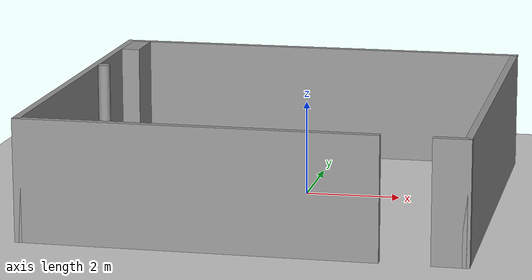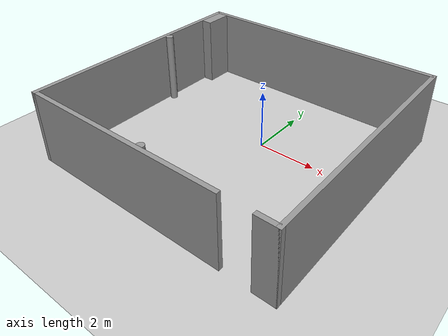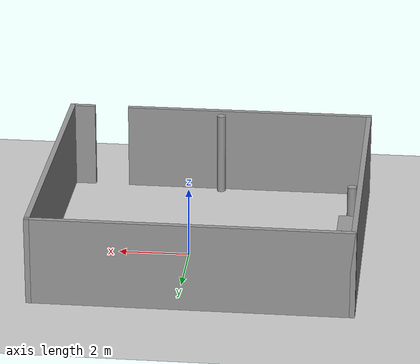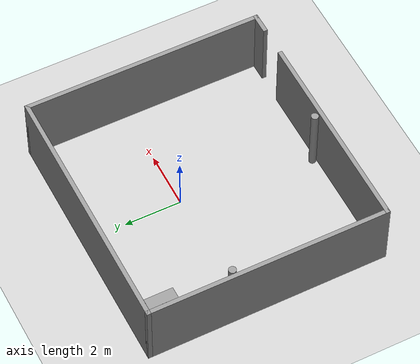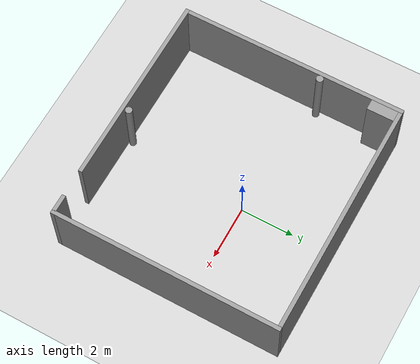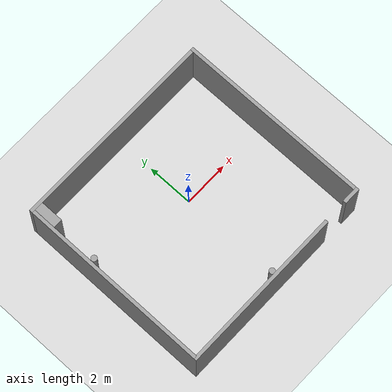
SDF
<sdf version="1.6">
 <world name="default">
  <light name="sun" type="directional">
   <pose>0 0 10 0 -0 0</pose>
   <diffuse>0.8 0.8 0.8 1</diffuse>
   <specular>0.2 0.2 0.2 1</specular>
   <attenuation>
    <range>1000</range>
    <constant>0.9</constant>
    <linear>0.01</linear>
    <quadratic>0.001</quadratic>
   </attenuation>
   <direction>-0.5 0.1 -0.9</direction>
  </light>
  <model name="ground_plane">
   <static>1</static>
   <link name="link">
    <collision name="collision">
     <geometry><plane><normal>0 0 1</normal><size>100 100</size></plane></geometry>
     <surface>
      <contact><collide_bitmask>65535</collide_bitmask></contact>
      <friction><ode><mu>100</mu><mu2>50</mu2></ode></friction>
     </surface>
    </collision>
    <visual name="visual">
     <cast_shadows>0</cast_shadows>
     <geometry><plane><normal>0 0 1</normal><size>100 100</size></plane></geometry>
     <material>
      <script><uri>file://media/materials/scripts/gazebo.material</uri><name>Gazebo/Grey</name></script>
     </material>
    </visual>
   </link>
  </model>
  <gravity>0 0 -9.8</gravity>
  <magnetic_field>6e-06 2.3e-05 -4.2e-05</magnetic_field>
  <atmosphere type="adiabatic"/>
  <physics name="default_physics" default="0" type="ode">
   <max_step_size>0.001</max_step_size>
   <real_time_factor>1</real_time_factor>
   <real_time_update_rate>1000</real_time_update_rate>
  </physics>
  <scene><ambient>0.4 0.4 0.4 1</ambient><background>0.7 0.7 0.7 1</background><shadows>1</shadows></scene>
  <audio><device>default</device></audio>
  <spherical_coordinates>
   <surface_model>EARTH_WGS84</surface_model>
   <latitude_deg>0</latitude_deg>
   <longitude_deg>0</longitude_deg>
   <elevation>0</elevation>
   <heading_deg>0</heading_deg>
  </spherical_coordinates>
  <model name="try2">
   <pose>-0.39709 -0.678514 0 0 -0 0</pose>
   <link name="Wall_13">
    <collision name="Wall_13_Collision">
     <geometry><box><size>8.5 0.15 2.5</size></box></geometry>
     <pose>0 0 1.25 0 -0 0</pose>
    </collision>
    <visual name="Wall_13_Visual">
     <pose>0 0 1.25 0 -0 0</pose>
     <geometry><box><size>8.5 0.15 2.5</size></box></geometry>
     <material>
      <script><uri>file://media/materials/scripts/gazebo.material</uri><name>Gazebo/Grey</name></script>
      <ambient>1 1 1 1</ambient>
     </material>
     <meta><layer>0</layer></meta>
    </visual>
    <pose>-4.425 -0 0 0 -0 -1.5708</pose>
   </link>
   <link name="Wall_14">
    <collision name="Wall_14_Collision">
     <geometry><box><size>7.25 0.15 2.5</size></box></geometry>
     <pose>0 0 1.25 0 -0 0</pose>
    </collision>
    <visual name="Wall_14_Visual">
     <pose>0 0 1.25 0 -0 0</pose>
     <geometry><box><size>7.25 0.15 2.5</size></box></geometry>
     <material>
      <script><uri>file://media/materials/scripts/gazebo.material</uri><name>Gazebo/Grey</name></script>
      <ambient>1 1 1 1</ambient>
     </material>
     <meta><layer>0</layer></meta>
    </visual>
    <pose>-0.875 -4.175 0 0 -0 0</pose>
   </link>
   <link name="Wall_7">
    <collision name="Wall_7_Collision">
     <geometry><box><size>9 0.15 2.5</size></box></geometry>
     <pose>0 0 1.25 0 -0 0</pose>
    </collision>
    <visual name="Wall_7_Visual">
     <pose>0 0 1.25 0 -0 0</pose>
     <geometry><box><size>9 0.15 2.5</size></box></geometry>
     <material>
      <script><uri>file://media/materials/scripts/gazebo.material</uri><name>Gazebo/Grey</name></script>
      <ambient>1 1 1 1</ambient>
     </material>
     <meta><layer>0</layer></meta>
    </visual>
    <pose>0 4.175 0 0 -0 0</pose>
   </link>
   <link name="Wall_8">
    <collision name="Wall_8_Collision">
     <geometry><box><size>8.5 0.15 2.5</size></box></geometry>
     <pose>0 0 1.25 0 -0 0</pose>
    </collision>
    <visual name="Wall_8_Visual">
     <pose>0 0 1.25 0 -0 0</pose>
     <geometry><box><size>8.5 0.15 2.5</size></box></geometry>
     <material>
      <script><uri>file://media/materials/scripts/gazebo.material</uri><name>Gazebo/Grey</name></script>
      <ambient>1 1 1 1</ambient>
     </material>
     <meta><layer>0</layer></meta>
    </visual>
    <pose>4.425 -0 0 0 -0 -1.5708</pose>
   </link>
   <link name="Wall_9">
    <collision name="Wall_9_Collision">
     <geometry><box><size>0.75 0.15 2.5</size></box></geometry>
     <pose>0 0 1.25 0 -0 0</pose>
    </collision>
    <visual name="Wall_9_Visual">
     <pose>0 0 1.25 0 -0 0</pose>
     <geometry><box><size>0.75 0.15 2.5</size></box></geometry>
     <material>
      <script><uri>file://media/materials/scripts/gazebo.material</uri><name>Gazebo/Grey</name></script>
      <ambient>1 1 1 1</ambient>
     </material>
     <meta><layer>0</layer></meta>
    </visual>
    <pose>4.125 -4.175 0 0 -0 3.14159</pose>
   </link>
   <static>1</static>
  </model>
  <model name="unit_cylinder">
   <pose>-4.61022 0.497755 1.26064 0 0 -0.00515</pose>
   <link name="link">
    <inertial>
     <mass>1</mass>
     <inertia><ixx>0.145833</ixx><ixy>0</ixy><ixz>0</ixz><iyy>0.145833</iyy><iyz>0</iyz><izz>0.125</izz></inertia>
    </inertial>
    <collision name="collision">
     <geometry><cylinder><radius>0.131175</radius><length>2.52129</length></cylinder></geometry>
    </collision>
    <visual name="visual">
     <geometry><cylinder><radius>0.131175</radius><length>2.52129</length></cylinder></geometry>
     <material>
      <script><name>Gazebo/Grey</name><uri>file://media/materials/scripts/gazebo.material</uri></script>
     </material>
    </visual>
   </link>
  </model>
  <model name="unit_cylinder_0">
   <pose>-0.456206 -4.6507 1.20394 0 0 -0.001897</pose>
   <link name="link">
    <inertial>
     <mass>1</mass>
     <inertia><ixx>0.145833</ixx><ixy>0</ixy><ixz>0</ixz><iyy>0.145833</iyy><iyz>0</iyz><izz>0.125</izz></inertia>
    </inertial>
    <collision name="collision">
     <geometry><cylinder><radius>0.127769</radius><length>2.40788</length></cylinder></geometry>
    </collision>
    <visual name="visual">
     <geometry><cylinder><radius>0.127769</radius><length>2.40788</length></cylinder></geometry>
     <material>
      <script><name>Gazebo/Grey</name><uri>file://media/materials/scripts/gazebo.material</uri></script>
     </material>
    </visual>
   </link>
  </model>
  <model name="unit_box">
   <pose>-4.54751 2.92148 1.25065 0 0 -4e-06</pose>
   <link name="link">
    <inertial>
     <mass>1</mass>
     <inertia>
      <ixx>0.166667</ixx>
      <ixy>0</ixy>
      <ixz>0</ixz>
      <iyy>0.166667</iyy>
      <iyz>0</iyz>
      <izz>0.166667</izz>
     </inertia>
    </inertial>
    <collision name="collision"><geometry><box><size>0.399142 1 2.50129</size></box></geometry></collision>
    <visual name="visual">
     <geometry><box><size>0.399142 1 2.50129</size></box></geometry>
     <material>
      <script><name>Gazebo/Grey</name><uri>file://media/materials/scripts/gazebo.material</uri></script>
     </material>
    </visual>
   </link>
  </model>
 </world>
</sdf>
